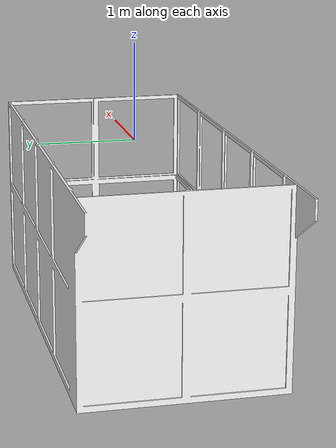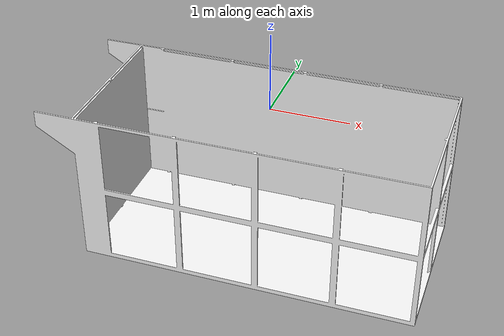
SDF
<?xml version="1.0" ?>
<sdf version="1.5">
  <model name="grmi_pool">
    <static>true</static>
    <link name="link">
      <collision name="grmi_pool">
        <pose>0 0 -2.0 0 0 0</pose>
        <geometry>
          <mesh>
            <uri>model://GRMI_pool/meshes/GRMI_pool_collision.dae</uri>
            <scale>1.0 1.0 1.0</scale>
          </mesh>
        </geometry>
      </collision>

      <visual name="grmi_pool">
        <cast_shadows>true</cast_shadows>
        <pose>0 0 -2.0 0 0 0</pose>
        <geometry>
          <mesh>
            <uri>model://GRMI_pool/meshes/GRMI_pool.dae</uri>
            <scale>1.0 1.0 1.0</scale>
          </mesh>
        </geometry>
      </visual>
    </link>
  </model>
</sdf>
